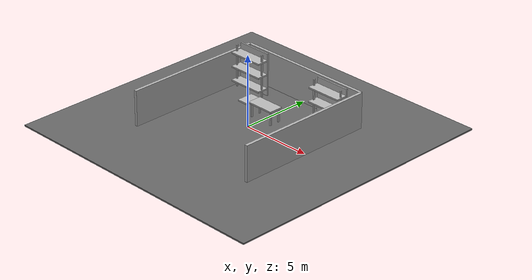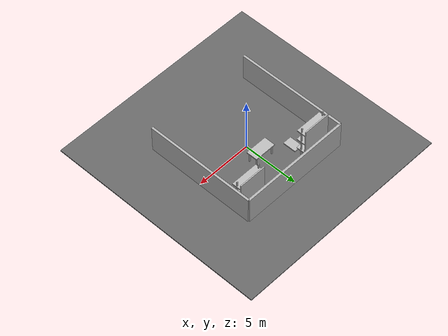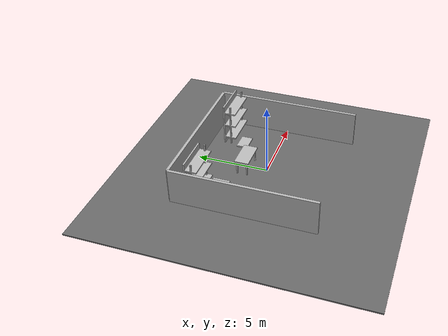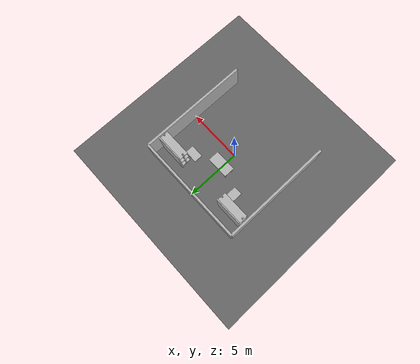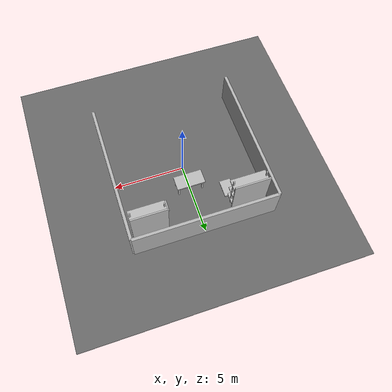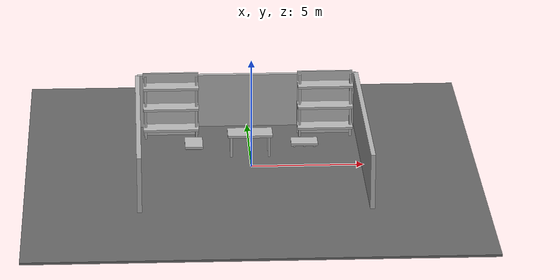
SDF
<?xml version="1.0"?>

<sdf version="1.10">

  <world name="workcell_world">

    <!-- PHYSICS                                           -->

    <physics name="default_physics" type="ode">

      <max_step_size>0.001</max_step_size>

      <real_time_factor>1.0</real_time_factor>

      <real_time_update_rate>1000</real_time_update_rate>

    </physics>

    <!-- GRAVITY                                           -->

    <gravity>0 0 -9.81</gravity>

    <!-- FLOOR                                             -->

    <include>

      <uri>model://floor</uri>

      <name>floor</name>

      <pose>0 0 0 0 0 0</pose>

    </include>

    <!-- BACK WALL                                         -->

    <include>

      <uri>model://wall</uri>

      <name>back_wall</name>

      <pose>0 5 1.25 0 0 0</pose>

    </include>

    <!-- LEFT WALL                                         -->

    <include>

      <uri>model://wall</uri>

      <name>left_wall</name>

      <pose>-5 0 1.25 0 0 1.5708</pose>

    </include>

    <!-- RIGHT WALL                                        -->

    <include>

      <uri>model://wall</uri>

      <name>right_wall</name>

      <pose>5 0 1.25 0 0 1.5708</pose>

    </include>

    <!-- TABLE                                             -->

    <include>

      <uri>model://table</uri>

      <name>work_table</name>

      <pose>0 1.5 0 0 0 0</pose>

    </include>

    <!-- PALLET                                            -->
    <include>

      <uri>model://pallet</uri>

      <name>pallet_1</name>

      <pose>2.5 2.5 0 0 0 0</pose>

    </include>

    <include>

      <uri>model://pallet</uri>

      <name>pallet_2</name>

      <pose>-2.5 2.5 0 0 0 1.5708</pose>

    </include>

    <!-- SHELF                                             -->
    <include>

      <uri>model://shelf</uri>

      <name>shelf_1</name>

      <pose>3.5 3.5 0 0 0 0</pose>

    </include>

    <include>

      <uri>model://shelf</uri>

      <name>shelf_2</name>

      <pose>-3.5 3.5 0 0 0 0</pose>

    </include>

    <!-- SUN                                               -->

    <light
      name="sun"
      type="directional">

      <cast_shadows>true</cast_shadows>

      <pose>0 0 10 0 0 0</pose>

      <diffuse>1 1 1 1</diffuse>

      <specular>0.2 0.2 0.2 1</specular>

      <direction>-0.5 0.5 -1</direction>

    </light>

  </world>

</sdf>

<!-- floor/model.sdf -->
<sdf version="1.10">

  <model name="floor">

    <static>true</static>

    <link name="floor_link">

      <collision name="collision">

        <geometry>

          <box>
            <size>20 20 0.1</size>
          </box>

        </geometry>

        <pose>0 0 -0.05 0 0 0</pose>

      </collision>

      <visual name="visual">

        <geometry>

          <box>
            <size>20 20 0.1</size>
          </box>

        </geometry>

        <pose>0 0 -0.05 0 0 0</pose>

        <material>

          <ambient>0.4 0.4 0.4 1</ambient>

          <diffuse>0.4 0.4 0.4 1</diffuse>

          <specular>0.1 0.1 0.1 1</specular>

        </material>

      </visual>

    </link>

  </model>

</sdf>

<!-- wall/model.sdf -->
<sdf version="1.10">

  <model name="wall">

    <!-- The wall does not move -->
    <static>true</static>

    <link name="wall_link">

      <!-- PHYSICAL COLLISION          -->

      <collision name="collision">

        <geometry>
          <box>
            <size>10 0.2 2.5</size>
          </box>
        </geometry>

      </collision>

      <!-- VISUAL                      -->

      <visual name="visual">

        <geometry>
          <box>
            <size>10 0.2 2.5</size>
          </box>
        </geometry>

        <material>

          <ambient>0.7 0.7 0.7 1</ambient>

          <diffuse>0.7 0.7 0.7 1</diffuse>

          <specular>0.2 0.2 0.2 1</specular>

        </material>

      </visual>

    </link>

  </model>

</sdf>

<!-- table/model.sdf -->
<sdf version="1.10">

  <model name="table">

    <static>true</static>

    <!-- TABLE TOP                   -->

    <link name="table_link">

      <collision name="table_top_collision">

        <pose>0 0 1.0 0 0 0</pose>

        <geometry>
          <box>
            <size>2.0 1.0 0.1</size>
          </box>
        </geometry>

      </collision>

      <visual name="table_top_visual">

        <pose>0 0 1.0 0 0 0</pose>

        <geometry>
          <box>
            <size>2.0 1.0 0.1</size>
          </box>
        </geometry>

      </visual>

      <!-- LEG 1                      -->

      <collision name="leg_1_collision">

        <pose>0.85 0.35 0.5 0 0 0</pose>

        <geometry>
          <box>
            <size>0.1 0.1 1.0</size>
          </box>
        </geometry>

      </collision>

      <visual name="leg_1_visual">

        <pose>0.85 0.35 0.5 0 0 0</pose>

        <geometry>
          <box>
            <size>0.1 0.1 1.0</size>
          </box>
        </geometry>

      </visual>

      <!-- LEG 2                      -->

      <collision name="leg_2_collision">

        <pose>-0.85 0.35 0.5 0 0 0</pose>

        <geometry>
          <box>
            <size>0.1 0.1 1.0</size>
          </box>
        </geometry>

      </collision>

      <visual name="leg_2_visual">

        <pose>-0.85 0.35 0.5 0 0 0</pose>

        <geometry>
          <box>
            <size>0.1 0.1 1.0</size>
          </box>
        </geometry>

      </visual>

      <!-- LEG 3                      -->

      <collision name="leg_3_collision">

        <pose>0.85 -0.35 0.5 0 0 0</pose>

        <geometry>
          <box>
            <size>0.1 0.1 1.0</size>
          </box>
        </geometry>

      </collision>

      <visual name="leg_3_visual">

        <pose>0.85 -0.35 0.5 0 0 0</pose>

        <geometry>
          <box>
            <size>0.1 0.1 1.0</size>
          </box>
        </geometry>

      </visual>

      <!-- LEG 4                      -->

      <collision name="leg_4_collision">

        <pose>-0.85 -0.35 0.5 0 0 0</pose>

        <geometry>
          <box>
            <size>0.1 0.1 1.0</size>
          </box>
        </geometry>

      </collision>

      <visual name="leg_4_visual">

        <pose>-0.85 -0.35 0.5 0 0 0</pose>

        <geometry>
          <box>
            <size>0.1 0.1 1.0</size>
          </box>
        </geometry>

      </visual>

    </link>

  </model>

</sdf>

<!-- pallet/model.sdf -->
<sdf version="1.10">

  <model name="pallet">

    <static>true</static>

    <link name="pallet_link">

      <!-- TOP                          -->

      <visual name="top_visual">

        <pose>0 0 0.14 0 0 0</pose>

        <geometry>

          <box>
            <size>1.2 0.8 0.1</size>
          </box>

        </geometry>

      </visual>

      <collision name="top_collision">

        <pose>0 0 0.14 0 0 0</pose>

        <geometry>

          <box>
            <size>1.2 0.8 0.1</size>
          </box>

        </geometry>

      </collision>

      <!-- SUPPORT 1                    -->

      <visual name="support_1_visual">

        <pose>0.45 0 0.07 0 0 0</pose>

        <geometry>

          <box>
            <size>0.1 0.7 0.1</size>
          </box>

        </geometry>

      </visual>

      <collision name="support_1_collision">

        <pose>0.45 0 0.07 0 0 0</pose>

        <geometry>

          <box>
            <size>0.1 0.7 0.1</size>
          </box>

        </geometry>

      </collision>

      <!-- SUPPORT 2                    -->

      <visual name="support_2_visual">

        <pose>-0.45 0 0.07 0 0 0</pose>

        <geometry>

          <box>
            <size>0.1 0.7 0.1</size>
          </box>

        </geometry>

      </visual>

      <collision name="support_2_collision">

        <pose>-0.45 0 0.07 0 0 0</pose>

        <geometry>

          <box>
            <size>0.1 0.7 0.1</size>
          </box>

        </geometry>

      </collision>

      <!-- CENTER SUPPORT               -->

      <visual name="support_center_visual">

        <pose>0 0 0.07 0 0 0</pose>

        <geometry>

          <box>
            <size>0.1 0.7 0.1</size>
          </box>

        </geometry>

      </visual>

      <collision name="support_center_collision">

        <pose>0 0 0.07 0 0 0</pose>

        <geometry>

          <box>
            <size>0.1 0.7 0.1</size>
          </box>

        </geometry>

      </collision>

    </link>

  </model>

</sdf>

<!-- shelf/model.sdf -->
<sdf version="1.10">

  <model name="shelf">

    <static>false</static>

    <link name="shelf_link">

      <!-- BACK FRAME                         -->

      <visual name="back_visual">

        <pose>0 0.45 1.5 0 0 0</pose>

        <geometry>
          <box>
            <size>2.5 0.1 3.0</size>
          </box>
        </geometry>

      </visual>

      <collision name="back_collision">

        <pose>0 0.45 1.5 0 0 0</pose>

        <geometry>
          <box>
            <size>2.5 0.1 3.0</size>
          </box>
        </geometry>

      </collision>

      <!-- SHELF 1                            -->

      <visual name="shelf_1_visual">

        <pose>0 0 0.5 0 0 0</pose>

        <geometry>
          <box>
            <size>2.5 0.8 0.1</size>
          </box>
        </geometry>

      </visual>

      <collision name="shelf_1_collision">

        <pose>0 0 0.5 0 0 0</pose>

        <geometry>
          <box>
            <size>2.5 0.8 0.1</size>
          </box>
        </geometry>

      </collision>

      <!-- SHELF 2                            -->

      <visual name="shelf_2_visual">

        <pose>0 0 1.5 0 0 0</pose>

        <geometry>
          <box>
            <size>2.5 0.8 0.1</size>
          </box>
        </geometry>

      </visual>

      <collision name="shelf_2_collision">

        <pose>0 0 1.5 0 0 0</pose>

        <geometry>
          <box>
            <size>2.5 0.8 0.1</size>
          </box>
        </geometry>

      </collision>

      <!-- SHELF 3                            -->

      <visual name="shelf_3_visual">

        <pose>0 0 2.5 0 0 0</pose>

        <geometry>
          <box>
            <size>2.5 0.8 0.1</size>
          </box>
        </geometry>

      </visual>

      <collision name="shelf_3_collision">

        <pose>0 0 2.5 0 0 0</pose>

        <geometry>
          <box>
            <size>2.5 0.8 0.1</size>
          </box>
        </geometry>

      </collision>

      <!-- LEFT POST                          -->

      <visual name="left_post_visual">

        <pose>-1.15 0 1.5 0 0 0</pose>

        <geometry>
          <box>
            <size>0.1 0.1 3.0</size>
          </box>
        </geometry>

      </visual>

      <collision name="left_post_collision">

        <pose>-1.15 0 1.5 0 0 0</pose>

        <geometry>
          <box>
            <size>0.1 0.1 3.0</size>
          </box>
        </geometry>

      </collision>

      <!-- RIGHT POST                         -->

      <visual name="right_post_visual">

        <pose>1.15 0 1.5 0 0 0</pose>

        <geometry>
          <box>
            <size>0.1 0.1 3.0</size>
          </box>
        </geometry>

      </visual>

      <collision name="right_post_collision">

        <pose>1.15 0 1.5 0 0 0</pose>

        <geometry>
          <box>
            <size>0.1 0.1 3.0</size>
          </box>
        </geometry>

      </collision>

    </link>

  </model>

</sdf>
